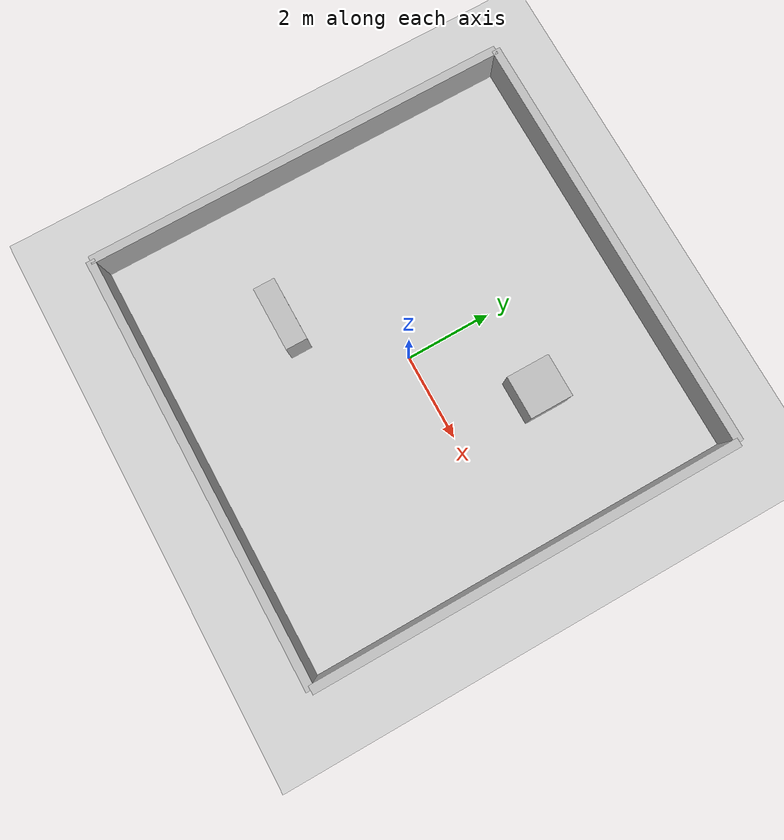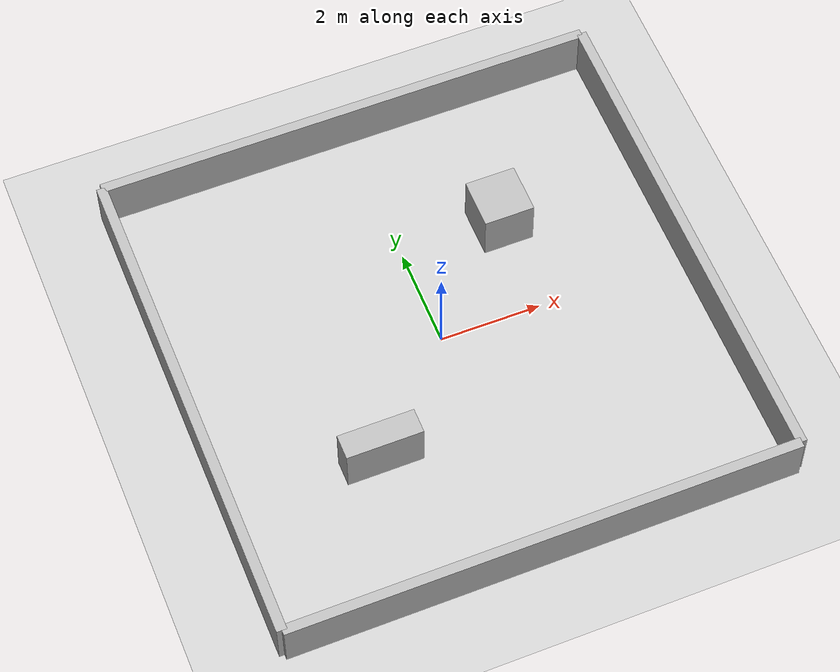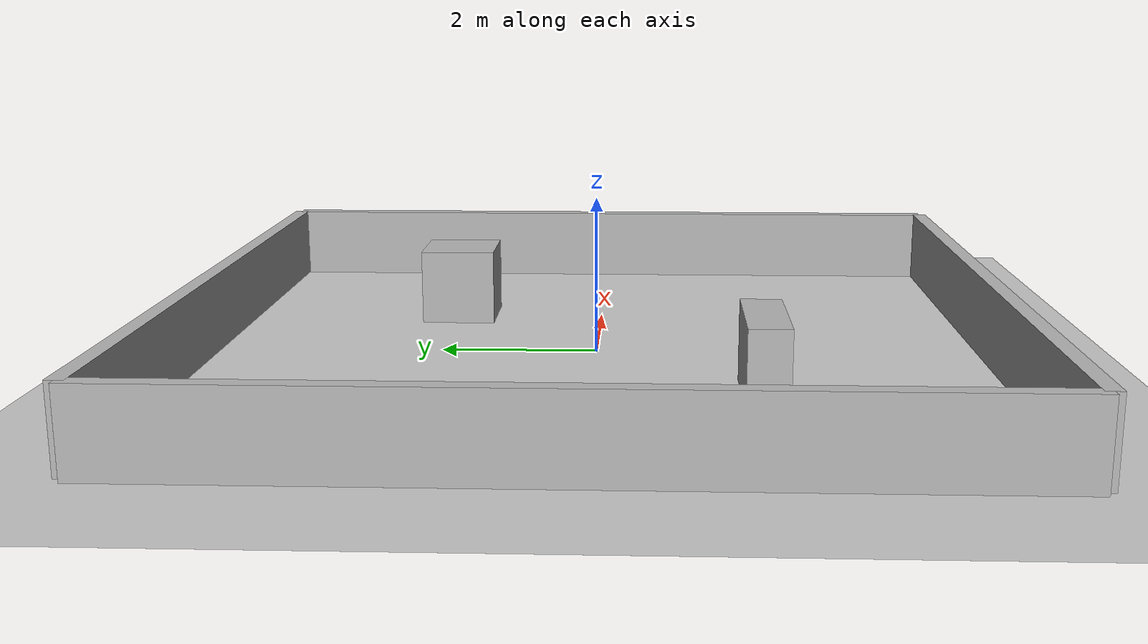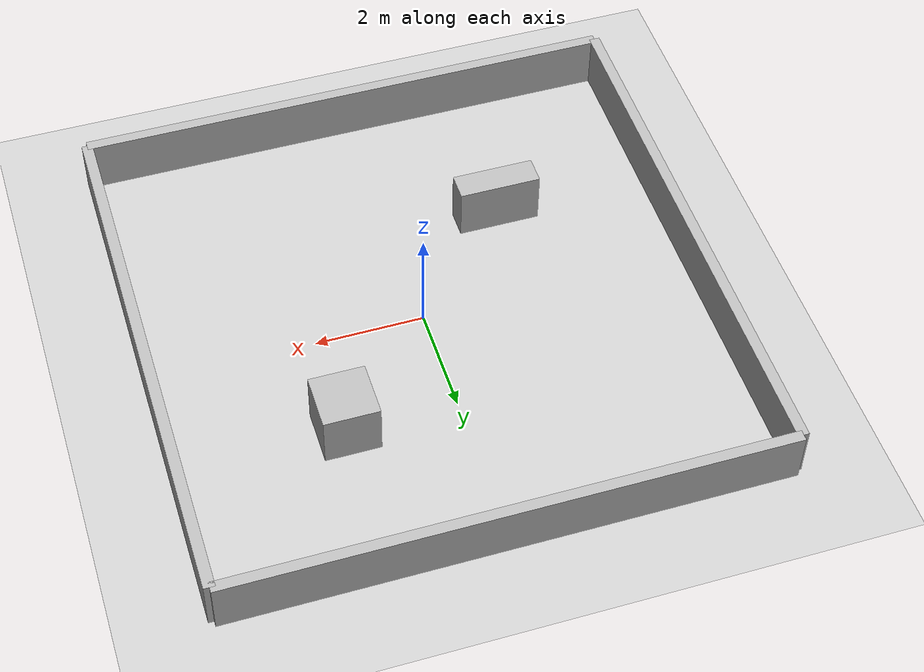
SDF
<?xml version="1.0" ?>
<sdf version="1.6">
  <world name="playground">
    <include>
      <uri>model://ground_plane</uri>
    </include>
    <include>
      <uri>model://sun</uri>
    </include>

    <!-- Enclosing Walls -->
    <model name="wall_north">
      <static>true</static>
      <pose>0 5 0.5 0 0 0</pose>
      <link name="link">
        <collision name="collision">
          <geometry><box><size>10 0.2 1.0</size></box></geometry>
        </collision>
        <visual name="visual">
          <geometry><box><size>10 0.2 1.0</size></box></geometry>
        </visual>
      </link>
    </model>

    <model name="wall_south">
      <static>true</static>
      <pose>0 -5 0.5 0 0 0</pose>
      <link name="link">
        <collision name="collision">
          <geometry><box><size>10 0.2 1.0</size></box></geometry>
        </collision>
        <visual name="visual">
          <geometry><box><size>10 0.2 1.0</size></box></geometry>
        </visual>
      </link>
    </model>

    <model name="wall_east">
      <static>true</static>
      <pose>5 0 0.5 0 0 0</pose>
      <link name="link">
        <collision name="collision">
          <geometry><box><size>0.2 10 1.0</size></box></geometry>
        </collision>
        <visual name="visual">
          <geometry><box><size>0.2 10 1.0</size></box></geometry>
        </visual>
      </link>
    </model>

    <model name="wall_west">
      <static>true</static>
      <pose>-5 0 0.5 0 0 0</pose>
      <link name="link">
        <collision name="collision">
          <geometry><box><size>0.2 10 1.0</size></box></geometry>
        </collision>
        <visual name="visual">
          <geometry><box><size>0.2 10 1.0</size></box></geometry>
        </visual>
      </link>
    </model>

    <!-- Obstacles -->
    <model name="obstacle_box_1">
      <static>true</static>
      <pose>2 2 0.5 0 0 0</pose>
      <link name="link">
        <collision name="collision">
          <geometry><box><size>1 1 1</size></box></geometry>
        </collision>
        <visual name="visual">
          <geometry><box><size>1 1 1</size></box></geometry>
        </visual>
      </link>
    </model>

    <model name="obstacle_box_2">
      <static>true</static>
      <pose>-2 -2 0.5 0 0 0</pose>
      <link name="link">
        <collision name="collision">
          <geometry><box><size>1.5 0.5 1</size></box></geometry>
        </collision>
        <visual name="visual">
          <geometry><box><size>1.5 0.5 1</size></box></geometry>
        </visual>
      </link>
    </model>
  </world>
</sdf>
